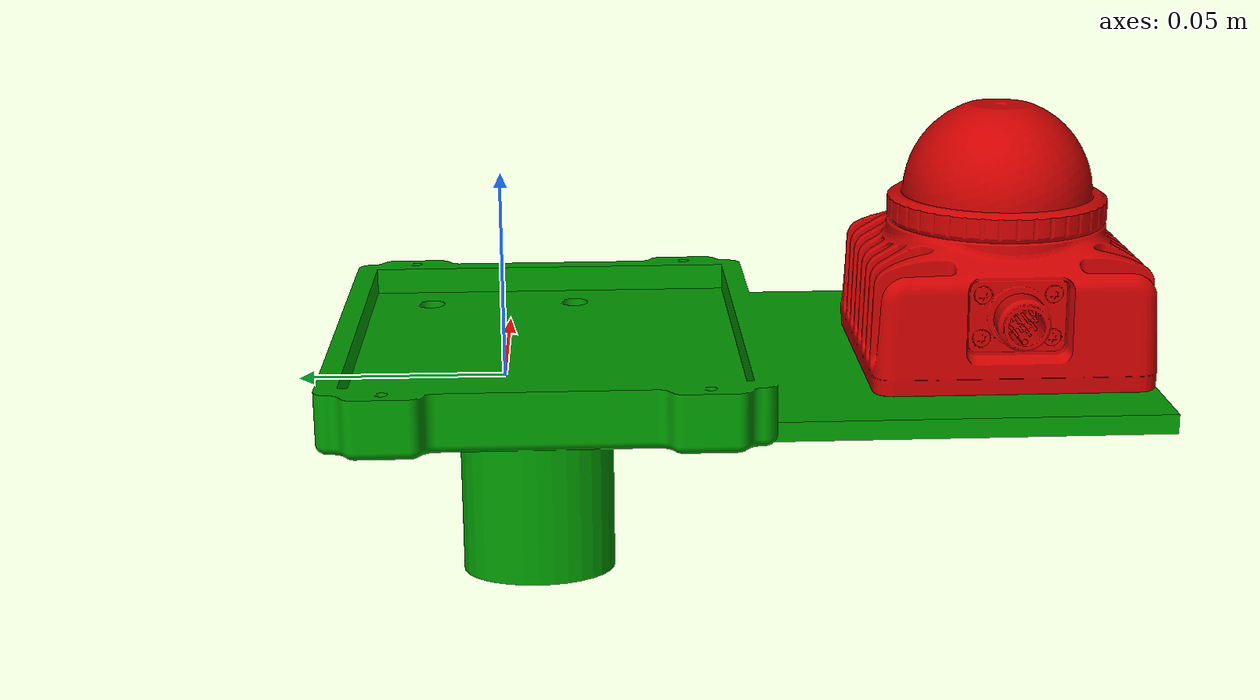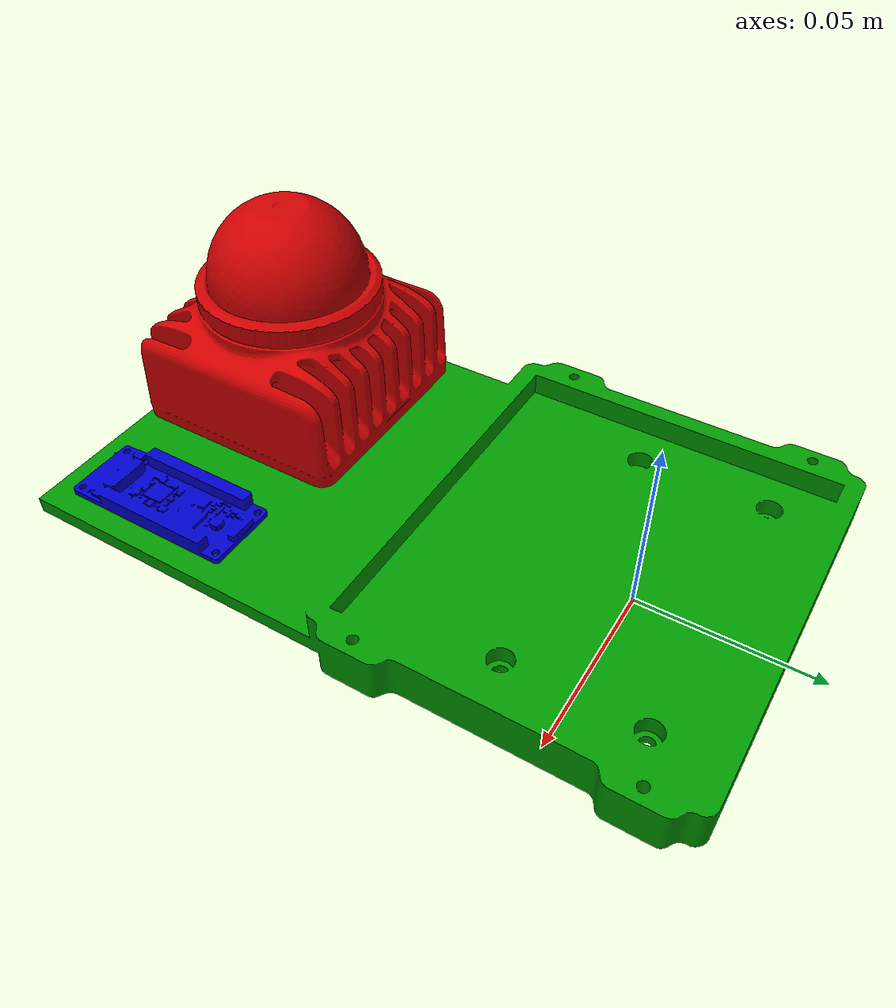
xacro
<?xml version="1.0"?>
<robot name="jig" xmlns:xacro="http://www.ros.org/wiki/xacro">

  <!-- ═══════════════════════════════════════════════════════════
       LINKS
  ═══════════════════════════════════════════════════════════ -->

  <!-- BASE -->
  <link name="base_link">
    <visual>
      <origin xyz="0 0 0" rpy="0 0 0"/>
      <geometry>
        <mesh filename="package://jig_description/meshes/jig_base.stl"
              scale="0.001 0.001 0.001"/>
      </geometry>
      <material name="green">
        <color rgba="0.0 0.6 0.0 1.0"/>
      </material>
    </visual>
    <collision>
      <origin xyz="0 0 0" rpy="0 0 0"/>
      <geometry>
        <mesh filename="package://jig_description/meshes/jig_base.stl"
              scale="0.001 0.001 0.001"/>
      </geometry>
    </collision>
    <inertial>
      <origin xyz="0 0 0" rpy="0 0 0"/>
      <mass value="0.5"/>
      <inertia ixx="0.01" ixy="0" ixz="0"
               iyy="0.01" iyz="0" izz="0.01"/>
    </inertial>
  </link>

  <!-- IMU LINK (Spresense) -->
  <link name="imu_link">
    <visual>
      <origin xyz="0 0 0" rpy="0 0 0"/>
      <geometry>
        <mesh filename="package://jig_description/meshes/imu.stl"
              scale="0.001 0.001 0.001"/>
      </geometry>
      <material name="blue">
        <color rgba="0.0 0.0 0.8 1.0"/>
      </material>
    </visual>
    <collision>
      <origin xyz="0 0 0" rpy="0 0 0"/>
      <geometry>
        <mesh filename="package://jig_description/meshes/imu.stl"
              scale="0.001 0.001 0.001"/>
      </geometry>
    </collision>
    <inertial>
      <origin xyz="0 0 0" rpy="0 0 0"/>
      <mass value="0.05"/>
      <inertia ixx="0.001" ixy="0" ixz="0"
               iyy="0.001" iyz="0" izz="0.001"/>
    </inertial>
  </link>

  <!-- LIDAR LINK (MID360) -->
  <link name="lidar_link">
    <visual>
      <origin xyz="0 0 0" rpy="0 0 0"/>
      <geometry>
        <mesh filename="package://jig_description/meshes/mid360.stl"
              scale="0.001 0.001 0.001"/>
      </geometry>
      <material name="red">
        <color rgba="0.8 0.0 0.0 1.0"/>
      </material>
    </visual>
    <collision>
      <origin xyz="0 0 0" rpy="0 0 0"/>
      <geometry>
        <mesh filename="package://jig_description/meshes/mid360.stl"
              scale="0.001 0.001 0.001"/>
      </geometry>
    </collision>
    <inertial>
      <origin xyz="0 0 0" rpy="0 0 0"/>
      <mass value="0.3"/>
      <inertia ixx="0.001" ixy="0" ixz="0"
               iyy="0.001" iyz="0" izz="0.001"/>
    </inertial>
  </link>

  <!-- ═══════════════════════════════════════════════════════════
       JOINTS
  ═══════════════════════════════════════════════════════════ -->

  <!-- BASE to IMU -->
  <joint name="base_to_imu" type="fixed">
    <parent link="base_link"/>
    <child link="imu_link"/>
    <origin xyz="0.04 -0.12 0.01" rpy="0 0 0"/>
  </joint>

  <!-- BASE to LIDAR -->
  <joint name="base_to_lidar" type="fixed">
    <parent link="base_link"/>
    <child link="lidar_link"/>
    <origin xyz="-0.00 -0.12 0.005" rpy="0 0 0"/>
  </joint>

  <!-- ═══════════════════════════════════════════════════════════
       GAZEBO PLUGINS
  ═══════════════════════════════════════════════════════════ -->

  <gazebo>
    <plugin filename="libgz-sim-sensors-system.so"
            name="gz::sim::systems::Sensors">
      <render_engine>ogre2</render_engine>
    </plugin>
    <plugin filename="libgz-sim-imu-system.so"
            name="gz::sim::systems::Imu">
    </plugin>
  </gazebo>

  <!-- ═══════════════════════════════════════════════════════════
       IMU SENSOR — same settings as reference
  ═══════════════════════════════════════════════════════════ -->

  <gazebo reference="imu_link">
    <sensor name="imu_sensor" type="imu">
      <always_on>true</always_on>
      <update_rate>200</update_rate>
      <topic>/imu/data_raw</topic>    <!-- add this -->
      <imu>
        <angular_velocity>
          <x>
            <noise type="gaussian">
              <mean>0.0</mean>
              <stddev>2e-4</stddev>
              <bias_mean>0.0000075</bias_mean>
              <bias_stddev>0.0000008</bias_stddev>
            </noise>
          </x>
          <y>
            <noise type="gaussian">
              <mean>0.0</mean>
              <stddev>2e-4</stddev>
              <bias_mean>0.0000075</bias_mean>
              <bias_stddev>0.0000008</bias_stddev>
            </noise>
          </y>
          <z>
            <noise type="gaussian">
              <mean>0.0</mean>
              <stddev>2e-4</stddev>
              <bias_mean>0.0000075</bias_mean>
              <bias_stddev>0.0000008</bias_stddev>
            </noise>
          </z>
        </angular_velocity>
        <linear_acceleration>
          <x>
            <noise type="gaussian">
              <mean>0.0</mean>
              <stddev>1.7e-2</stddev>
              <bias_mean>0.1</bias_mean>
              <bias_stddev>0.001</bias_stddev>
            </noise>
          </x>
          <y>
            <noise type="gaussian">
              <mean>0.0</mean>
              <stddev>1.7e-2</stddev>
              <bias_mean>0.1</bias_mean>
              <bias_stddev>0.001</bias_stddev>
            </noise>
          </y>
          <z>
            <noise type="gaussian">
              <mean>0.0</mean>
              <stddev>1.7e-2</stddev>
              <bias_mean>0.1</bias_mean>
              <bias_stddev>0.001</bias_stddev>
            </noise>
          </z>
        </linear_acceleration>
      </imu>
      <plugin filename="libgz-sim-imu-system.so"
              name="gz::sim::systems::Imu">
      </plugin>
    </sensor>
  </gazebo>

  <!-- ═══════════════════════════════════════════════════════════
       LIDAR SENSOR — same settings as reference
  ═══════════════════════════════════════════════════════════ -->

  <gazebo reference="lidar_link">
    <sensor name="lidar_sensor" type="gpu_lidar">
      <always_on>true</always_on>
      <update_rate>10</update_rate>
      <topic>/scan</topic>
      <visualize>true</visualize>
      <lidar>
        <scan>
          <horizontal>
            <samples>420</samples>
            <resolution>1</resolution>
            <resolution>0.1047</resolution>
            <min_angle>-3.1415</min_angle>
            <max_angle>3.1415</max_angle>
          </horizontal>
          <vertical>
            <samples>40</samples>
            <resolution>1</resolution>
            <resolution>0.1047</resolution>
            <min_angle>0</min_angle>
            <max_angle>0.6109</max_angle>
          </vertical>
        </scan>
        <range>
          <min>0.2</min>
          <max>150.0</max>
          <resolution>0.05</resolution>
        </range>
        <noise>
          <type>gaussian</type>
          <mean>0.0</mean>
          <stddev>0.01</stddev>
        </noise>
      </lidar>
    </sensor>
  </gazebo>

</robot>
